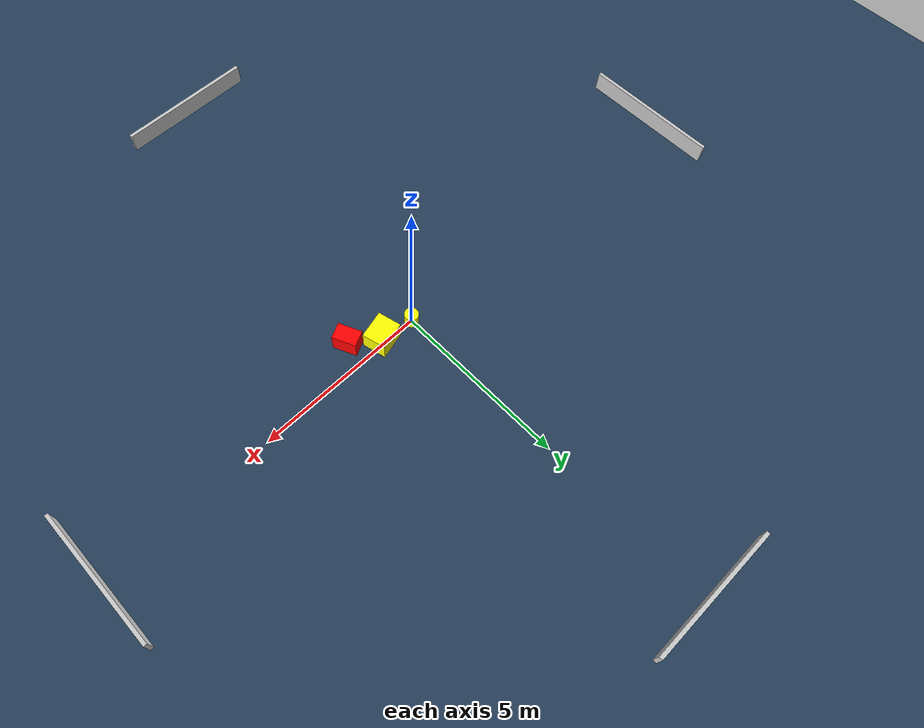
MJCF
<?xml version="1.0" ?>
<mujoco model="generated_environment">
  <option timestep="0.01" integrator="RK4" cone="elliptic"/>
  <default>
    <geom density="1"/>
  </default>
  <asset>
    <texture builtin="gradient" height="3072" name="skybox" rgb1="0.3 0.5 0.7" rgb2="0 0 0" type="skybox" width="512"/>
    <texture builtin="checker" height="300" name="groundplane" rgb1="0.2 0.3 0.4" rgb2="0.1 0.2 0.3" type="2d" width="300"/>
    <material name="groundplane" reflectance="0.2" texrepeat="5 5" texture="groundplane"/>
  </asset>
  <worldbody>
    <light dir="0 0 -1" directional="true" pos="0 0 1.5"/>
    <geom condim="3" friction="0.5 0.005 0.001" material="groundplane" name="floor" pos="0 0 0" size="0 0 0.05" type="plane"/>
    <body name="walls">
      <geom name="wall_1" condim="4" pos="-10.0 0.0 0.3" rgba="0.800000011920929 0.800000011920929 0.800000011920929 1.0" size="0.05 2.0 0.3" type="box"/>
      <geom name="wall_2" condim="4" pos="10.0 0.0 0.3" rgba="0.800000011920929 0.800000011920929 0.800000011920929 1.0" size="0.05 2.0 0.3" type="box"/>
      <geom name="wall_3" condim="4" pos="0.0 -10.0 0.3" rgba="0.800000011920929 0.800000011920929 0.800000011920929 1.0" size="2.0 0.05 0.3" type="box"/>
      <geom name="wall_4" condim="4" pos="0.0 10.0 0.3" rgba="0.800000011920929 0.800000011920929 0.800000011920929 1.0" size="2.0 0.05 0.3" type="box"/>
    </body>
    <body name="robot">
      <joint name="joint_x" type="slide" pos="0 0 0" axis="1 0 0"/>
      <joint name="joint_y" type="slide" pos="0 0 0" axis="0 1 0"/>
      <geom name="robot" type="cylinder" pos="0.0 0.0 0.2" size="0.2 0.2 0.0" mass="5.0" friction="1.0 0.005 0.0001" condim="4" rgba="1.0 1.0 0.0 1.0"/>
    </body>
    <body name="obstacle_1_movable">
      <geom name="obstacle_1_movable" condim="4" pos="0.9628356610327891 -0.12388692787697905 0.3" euler="0 0 194.41350898304685" friction="0.0 0.005 0.001" rgba="1.0 1.0 0.0 1.0" size="0.39328275217432257 0.3367499500643967 0.3" type="box" mass="0.1"/>
      <joint type="free"/>
    </body>
    <body name="obstacle_2_static">
      <geom name="obstacle_2_static" condim="4" pos="1.7124280828940464 -0.6549348793552224 0.3" euler="0 0 115.12043902571531" friction="0.0 0.005 0.001" rgba="1.0 0.0 0.0 1.0" size="0.3413361570659874 0.2268332464184053 0.3" type="box"/>
    </body>
  </worldbody>
  <actuator>
    <motor name="actuator_x" joint="joint_x" gear="1" ctrlrange="-1 1"/>
    <motor name="actuator_y" joint="joint_y" gear="1" ctrlrange="-1 1"/>
  </actuator>
</mujoco>
